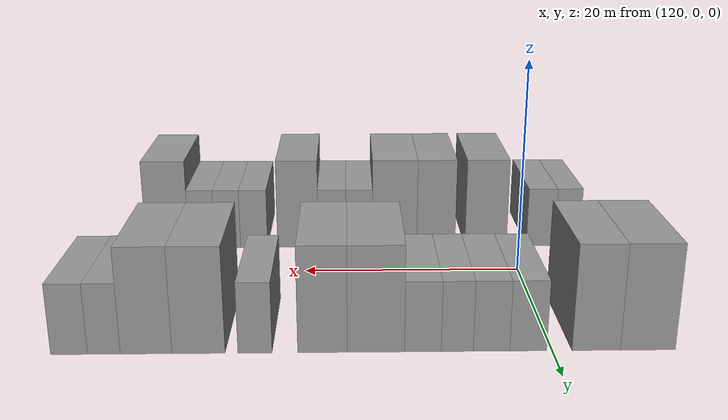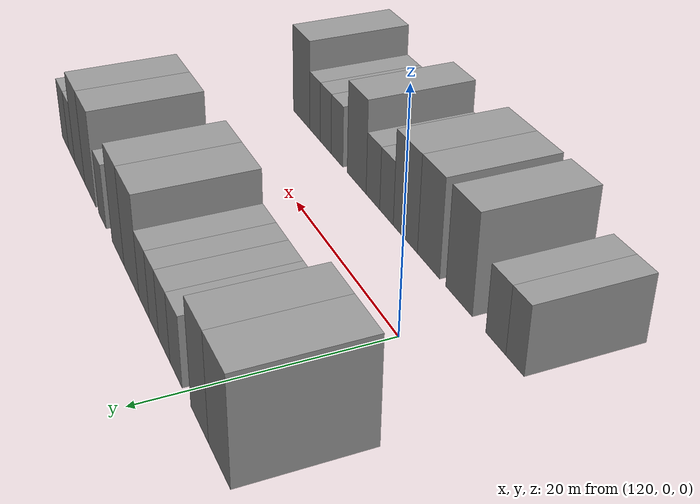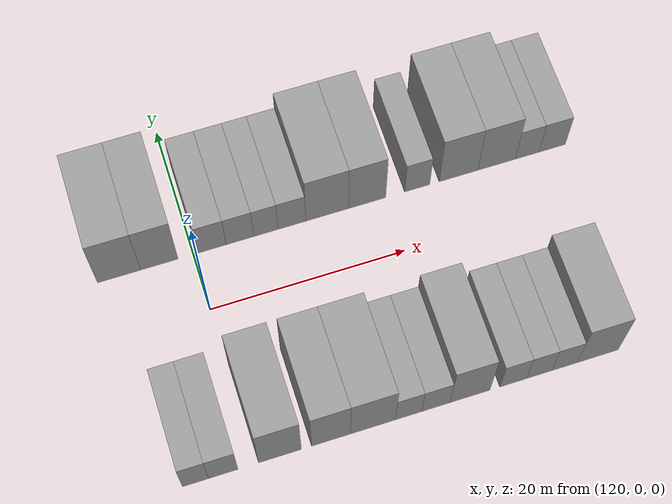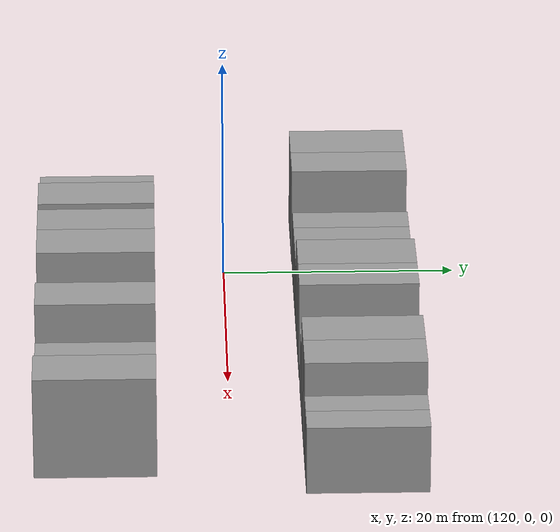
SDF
<sdf version="1.6">
 <world name="default">
  <model name="building_25">
   <static>1</static>
   <pose>112.4384 11.0000 0 0.000000 0.000000 1.570796</pose>
   <link name="link">
    <pose>0 0 4.50 0 0 0</pose>
    <collision name="collision"><geometry><box><size>10.0000 4.3634 9.0000</size></box></geometry></collision>
    <visual name="visual">
     <cast_shadows>0</cast_shadows>
     <geometry><box><size>10.0000 4.3634 9.0000</size></box></geometry>
     <material>
      <script>
       <uri>model://grey_wall/materials/scripts</uri>
       <uri>model://grey_wall/materials/textures</uri>
       <name>vrc/grey_wall</name>
      </script>
     </material>
    </visual>
   </link>
  </model>
  <model name="building_26">
   <static>1</static>
   <pose>116.5243 11.0000 0 0.000000 0.000000 1.570796</pose>
   <link name="link">
    <pose>0 0 4.50 0 0 0</pose>
    <collision name="collision"><geometry><box><size>10.0000 3.8084 9.0000</size></box></geometry></collision>
    <visual name="visual">
     <cast_shadows>0</cast_shadows>
     <geometry><box><size>10.0000 3.8084 9.0000</size></box></geometry>
     <material>
      <script>
       <uri>model://grey_wall/materials/scripts</uri>
       <uri>model://grey_wall/materials/textures</uri>
       <name>vrc/grey_wall</name>
      </script>
     </material>
    </visual>
   </link>
  </model>
  <model name="building_27">
   <static>1</static>
   <pose>121.8879 11.0000 0 0.000000 0.000000 1.570796</pose>
   <link name="link">
    <pose>0 0 3.00 0 0 0</pose>
    <collision name="collision"><geometry><box><size>10.0000 2.9187 6.0000</size></box></geometry></collision>
    <visual name="visual">
     <cast_shadows>0</cast_shadows>
     <geometry><box><size>10.0000 2.9187 6.0000</size></box></geometry>
     <material>
      <script>
       <uri>model://grey_wall/materials/scripts</uri>
       <uri>model://grey_wall/materials/textures</uri>
       <name>vrc/grey_wall</name>
      </script>
     </material>
    </visual>
   </link>
  </model>
  <model name="building_28">
   <static>1</static>
   <pose>124.7764 11.0000 0 0.000000 0.000000 1.570796</pose>
   <link name="link">
    <pose>0 0 3.00 0 0 0</pose>
    <collision name="collision"><geometry><box><size>10.0000 2.8584 6.0000</size></box></geometry></collision>
    <visual name="visual">
     <cast_shadows>0</cast_shadows>
     <geometry><box><size>10.0000 2.8584 6.0000</size></box></geometry>
     <material>
      <script>
       <uri>model://grey_wall/materials/scripts</uri>
       <uri>model://grey_wall/materials/textures</uri>
       <name>vrc/grey_wall</name>
      </script>
     </material>
    </visual>
   </link>
  </model>
  <model name="building_29">
   <static>1</static>
   <pose>127.4666 11.0000 0 0.000000 0.000000 1.570796</pose>
   <link name="link">
    <pose>0 0 3.00 0 0 0</pose>
    <collision name="collision"><geometry><box><size>10.0000 2.5221 6.0000</size></box></geometry></collision>
    <visual name="visual">
     <cast_shadows>0</cast_shadows>
     <geometry><box><size>10.0000 2.5221 6.0000</size></box></geometry>
     <material>
      <script>
       <uri>model://grey_wall/materials/scripts</uri>
       <uri>model://grey_wall/materials/textures</uri>
       <name>vrc/grey_wall</name>
      </script>
     </material>
    </visual>
   </link>
  </model>
  <model name="building_30">
   <static>1</static>
   <pose>130.1689 11.0000 0 0.000000 0.000000 1.570796</pose>
   <link name="link">
    <pose>0 0 3.00 0 0 0</pose>
    <collision name="collision"><geometry><box><size>10.0000 2.8825 6.0000</size></box></geometry></collision>
    <visual name="visual">
     <cast_shadows>0</cast_shadows>
     <geometry><box><size>10.0000 2.8825 6.0000</size></box></geometry>
     <material>
      <script>
       <uri>model://grey_wall/materials/scripts</uri>
       <uri>model://grey_wall/materials/textures</uri>
       <name>vrc/grey_wall</name>
      </script>
     </material>
    </visual>
   </link>
  </model>
  <model name="building_31">
   <static>1</static>
   <pose>133.8577 11.0000 0 0.000000 0.000000 1.570796</pose>
   <link name="link">
    <pose>0 0 4.50 0 0 0</pose>
    <collision name="collision"><geometry><box><size>10.0000 4.4951 9.0000</size></box></geometry></collision>
    <visual name="visual">
     <cast_shadows>0</cast_shadows>
     <geometry><box><size>10.0000 4.4951 9.0000</size></box></geometry>
     <material>
      <script>
       <uri>model://grey_wall/materials/scripts</uri>
       <uri>model://grey_wall/materials/textures</uri>
       <name>vrc/grey_wall</name>
      </script>
     </material>
    </visual>
   </link>
  </model>
  <model name="building_32">
   <static>1</static>
   <pose>138.0443 11.0000 0 0.000000 0.000000 1.570796</pose>
   <link name="link">
    <pose>0 0 4.50 0 0 0</pose>
    <collision name="collision"><geometry><box><size>10.0000 3.8781 9.0000</size></box></geometry></collision>
    <visual name="visual">
     <cast_shadows>0</cast_shadows>
     <geometry><box><size>10.0000 3.8781 9.0000</size></box></geometry>
     <material>
      <script>
       <uri>model://grey_wall/materials/scripts</uri>
       <uri>model://grey_wall/materials/textures</uri>
       <name>vrc/grey_wall</name>
      </script>
     </material>
    </visual>
   </link>
  </model>
  <model name="building_33">
   <static>1</static>
   <pose>143.3178 11.0000 0 0.000000 0.000000 1.570796</pose>
   <link name="link">
    <pose>0 0 3.00 0 0 0</pose>
    <collision name="collision"><geometry><box><size>10.0000 2.6688 6.0000</size></box></geometry></collision>
    <visual name="visual">
     <cast_shadows>0</cast_shadows>
     <geometry><box><size>10.0000 2.6688 6.0000</size></box></geometry>
     <material>
      <script>
       <uri>model://grey_wall/materials/scripts</uri>
       <uri>model://grey_wall/materials/textures</uri>
       <name>vrc/grey_wall</name>
      </script>
     </material>
    </visual>
   </link>
  </model>
  <model name="building_34">
   <static>1</static>
   <pose>147.7226 11.0000 0 0.000000 0.000000 1.570796</pose>
   <link name="link">
    <pose>0 0 4.50 0 0 0</pose>
    <collision name="collision"><geometry><box><size>10.0000 4.1409 9.0000</size></box></geometry></collision>
    <visual name="visual">
     <cast_shadows>0</cast_shadows>
     <geometry><box><size>10.0000 4.1409 9.0000</size></box></geometry>
     <material>
      <script>
       <uri>model://grey_wall/materials/scripts</uri>
       <uri>model://grey_wall/materials/textures</uri>
       <name>vrc/grey_wall</name>
      </script>
     </material>
    </visual>
   </link>
  </model>
  <model name="building_35">
   <static>1</static>
   <pose>151.8063 11.0000 0 0.000000 0.000000 1.570796</pose>
   <link name="link">
    <pose>0 0 4.50 0 0 0</pose>
    <collision name="collision"><geometry><box><size>10.0000 4.0263 9.0000</size></box></geometry></collision>
    <visual name="visual">
     <cast_shadows>0</cast_shadows>
     <geometry><box><size>10.0000 4.0263 9.0000</size></box></geometry>
     <material>
      <script>
       <uri>model://grey_wall/materials/scripts</uri>
       <uri>model://grey_wall/materials/textures</uri>
       <name>vrc/grey_wall</name>
      </script>
     </material>
    </visual>
   </link>
  </model>
  <model name="building_36">
   <static>1</static>
   <pose>155.0954 11.0000 0 0.000000 0.000000 1.570796</pose>
   <link name="link">
    <pose>0 0 3.00 0 0 0</pose>
    <collision name="collision"><geometry><box><size>10.0000 2.5520 6.0000</size></box></geometry></collision>
    <visual name="visual">
     <cast_shadows>0</cast_shadows>
     <geometry><box><size>10.0000 2.5520 6.0000</size></box></geometry>
     <material>
      <script>
       <uri>model://grey_wall/materials/scripts</uri>
       <uri>model://grey_wall/materials/textures</uri>
       <name>vrc/grey_wall</name>
      </script>
     </material>
    </visual>
   </link>
  </model>
  <model name="building_37">
   <static>1</static>
   <pose>157.8028 11.0000 0 0.000000 0.000000 1.570796</pose>
   <link name="link">
    <pose>0 0 3.00 0 0 0</pose>
    <collision name="collision"><geometry><box><size>10.0000 2.8628 6.0000</size></box></geometry></collision>
    <visual name="visual">
     <cast_shadows>0</cast_shadows>
     <geometry><box><size>10.0000 2.8628 6.0000</size></box></geometry>
     <material>
      <script>
       <uri>model://grey_wall/materials/scripts</uri>
       <uri>model://grey_wall/materials/textures</uri>
       <name>vrc/grey_wall</name>
      </script>
     </material>
    </visual>
   </link>
  </model>
  <model name="building_75">
   <static>1</static>
   <pose>114.0113 -11.0000 0 0.000000 0.000000 1.570796</pose>
   <link name="link">
    <pose>0 0 3.00 0 0 0</pose>
    <collision name="collision"><geometry><box><size>10.0000 2.5022 6.0000</size></box></geometry></collision>
    <visual name="visual">
     <cast_shadows>0</cast_shadows>
     <geometry><box><size>10.0000 2.5022 6.0000</size></box></geometry>
     <material>
      <script>
       <uri>model://grey_wall/materials/scripts</uri>
       <uri>model://grey_wall/materials/textures</uri>
       <name>vrc/grey_wall</name>
      </script>
     </material>
    </visual>
   </link>
  </model>
  <model name="building_76">
   <static>1</static>
   <pose>116.6865 -11.0000 0 0.000000 0.000000 1.570796</pose>
   <link name="link">
    <pose>0 0 3.00 0 0 0</pose>
    <collision name="collision"><geometry><box><size>10.0000 2.8482 6.0000</size></box></geometry></collision>
    <visual name="visual">
     <cast_shadows>0</cast_shadows>
     <geometry><box><size>10.0000 2.8482 6.0000</size></box></geometry>
     <material>
      <script>
       <uri>model://grey_wall/materials/scripts</uri>
       <uri>model://grey_wall/materials/textures</uri>
       <name>vrc/grey_wall</name>
      </script>
     </material>
    </visual>
   </link>
  </model>
  <model name="building_77">
   <static>1</static>
   <pose>122.2009 -11.0000 0 0.000000 0.000000 1.570796</pose>
   <link name="link">
    <pose>0 0 4.50 0 0 0</pose>
    <collision name="collision"><geometry><box><size>10.0000 4.1806 9.0000</size></box></geometry></collision>
    <visual name="visual">
     <cast_shadows>0</cast_shadows>
     <geometry><box><size>10.0000 4.1806 9.0000</size></box></geometry>
     <material>
      <script>
       <uri>model://grey_wall/materials/scripts</uri>
       <uri>model://grey_wall/materials/textures</uri>
       <name>vrc/grey_wall</name>
      </script>
     </material>
    </visual>
   </link>
  </model>
  <model name="building_78">
   <static>1</static>
   <pose>127.2117 -11.0000 0 0.000000 0.000000 1.570796</pose>
   <link name="link">
    <pose>0 0 4.50 0 0 0</pose>
    <collision name="collision"><geometry><box><size>10.0000 3.8410 9.0000</size></box></geometry></collision>
    <visual name="visual">
     <cast_shadows>0</cast_shadows>
     <geometry><box><size>10.0000 3.8410 9.0000</size></box></geometry>
     <material>
      <script>
       <uri>model://grey_wall/materials/scripts</uri>
       <uri>model://grey_wall/materials/textures</uri>
       <name>vrc/grey_wall</name>
      </script>
     </material>
    </visual>
   </link>
  </model>
  <model name="building_79">
   <static>1</static>
   <pose>131.3590 -11.0000 0 0.000000 0.000000 1.570796</pose>
   <link name="link">
    <pose>0 0 4.50 0 0 0</pose>
    <collision name="collision"><geometry><box><size>10.0000 4.4536 9.0000</size></box></geometry></collision>
    <visual name="visual">
     <cast_shadows>0</cast_shadows>
     <geometry><box><size>10.0000 4.4536 9.0000</size></box></geometry>
     <material>
      <script>
       <uri>model://grey_wall/materials/scripts</uri>
       <uri>model://grey_wall/materials/textures</uri>
       <name>vrc/grey_wall</name>
      </script>
     </material>
    </visual>
   </link>
  </model>
  <model name="building_80">
   <static>1</static>
   <pose>134.9126 -11.0000 0 0.000000 0.000000 1.570796</pose>
   <link name="link">
    <pose>0 0 3.00 0 0 0</pose>
    <collision name="collision"><geometry><box><size>10.0000 2.6535 6.0000</size></box></geometry></collision>
    <visual name="visual">
     <cast_shadows>0</cast_shadows>
     <geometry><box><size>10.0000 2.6535 6.0000</size></box></geometry>
     <material>
      <script>
       <uri>model://grey_wall/materials/scripts</uri>
       <uri>model://grey_wall/materials/textures</uri>
       <name>vrc/grey_wall</name>
      </script>
     </material>
    </visual>
   </link>
  </model>
  <model name="building_81">
   <static>1</static>
   <pose>137.6286 -11.0000 0 0.000000 0.000000 1.570796</pose>
   <link name="link">
    <pose>0 0 3.00 0 0 0</pose>
    <collision name="collision"><geometry><box><size>10.0000 2.7786 6.0000</size></box></geometry></collision>
    <visual name="visual">
     <cast_shadows>0</cast_shadows>
     <geometry><box><size>10.0000 2.7786 6.0000</size></box></geometry>
     <material>
      <script>
       <uri>model://grey_wall/materials/scripts</uri>
       <uri>model://grey_wall/materials/textures</uri>
       <name>vrc/grey_wall</name>
      </script>
     </material>
    </visual>
   </link>
  </model>
  <model name="building_82">
   <static>1</static>
   <pose>141.0421 -11.0000 0 0.000000 0.000000 1.570796</pose>
   <link name="link">
    <pose>0 0 4.50 0 0 0</pose>
    <collision name="collision"><geometry><box><size>10.0000 4.0484 9.0000</size></box></geometry></collision>
    <visual name="visual">
     <cast_shadows>0</cast_shadows>
     <geometry><box><size>10.0000 4.0484 9.0000</size></box></geometry>
     <material>
      <script>
       <uri>model://grey_wall/materials/scripts</uri>
       <uri>model://grey_wall/materials/textures</uri>
       <name>vrc/grey_wall</name>
      </script>
     </material>
    </visual>
   </link>
  </model>
  <model name="building_83">
   <static>1</static>
   <pose>145.4181 -11.0000 0 0.000000 0.000000 1.570796</pose>
   <link name="link">
    <pose>0 0 3.00 0 0 0</pose>
    <collision name="collision"><geometry><box><size>10.0000 2.7036 6.0000</size></box></geometry></collision>
    <visual name="visual">
     <cast_shadows>0</cast_shadows>
     <geometry><box><size>10.0000 2.7036 6.0000</size></box></geometry>
     <material>
      <script>
       <uri>model://grey_wall/materials/scripts</uri>
       <uri>model://grey_wall/materials/textures</uri>
       <name>vrc/grey_wall</name>
      </script>
     </material>
    </visual>
   </link>
  </model>
  <model name="building_84">
   <static>1</static>
   <pose>148.0604 -11.0000 0 0.000000 0.000000 1.570796</pose>
   <link name="link">
    <pose>0 0 3.00 0 0 0</pose>
    <collision name="collision"><geometry><box><size>10.0000 2.5810 6.0000</size></box></geometry></collision>
    <visual name="visual">
     <cast_shadows>0</cast_shadows>
     <geometry><box><size>10.0000 2.5810 6.0000</size></box></geometry>
     <material>
      <script>
       <uri>model://grey_wall/materials/scripts</uri>
       <uri>model://grey_wall/materials/textures</uri>
       <name>vrc/grey_wall</name>
      </script>
     </material>
    </visual>
   </link>
  </model>
  <model name="building_85">
   <static>1</static>
   <pose>150.6372 -11.0000 0 0.000000 0.000000 1.570796</pose>
   <link name="link">
    <pose>0 0 3.00 0 0 0</pose>
    <collision name="collision"><geometry><box><size>10.0000 2.5727 6.0000</size></box></geometry></collision>
    <visual name="visual">
     <cast_shadows>0</cast_shadows>
     <geometry><box><size>10.0000 2.5727 6.0000</size></box></geometry>
     <material>
      <script>
       <uri>model://grey_wall/materials/scripts</uri>
       <uri>model://grey_wall/materials/textures</uri>
       <name>vrc/grey_wall</name>
      </script>
     </material>
    </visual>
   </link>
  </model>
  <model name="building_86">
   <static>1</static>
   <pose>154.0472 -11.0000 0 0.000000 0.000000 1.570796</pose>
   <link name="link">
    <pose>0 0 4.50 0 0 0</pose>
    <collision name="collision"><geometry><box><size>10.0000 4.2473 9.0000</size></box></geometry></collision>
    <visual name="visual">
     <cast_shadows>0</cast_shadows>
     <geometry><box><size>10.0000 4.2473 9.0000</size></box></geometry>
     <material>
      <script>
       <uri>model://grey_wall/materials/scripts</uri>
       <uri>model://grey_wall/materials/textures</uri>
       <name>vrc/grey_wall</name>
      </script>
     </material>
    </visual>
   </link>
  </model>
 </world>
</sdf>
